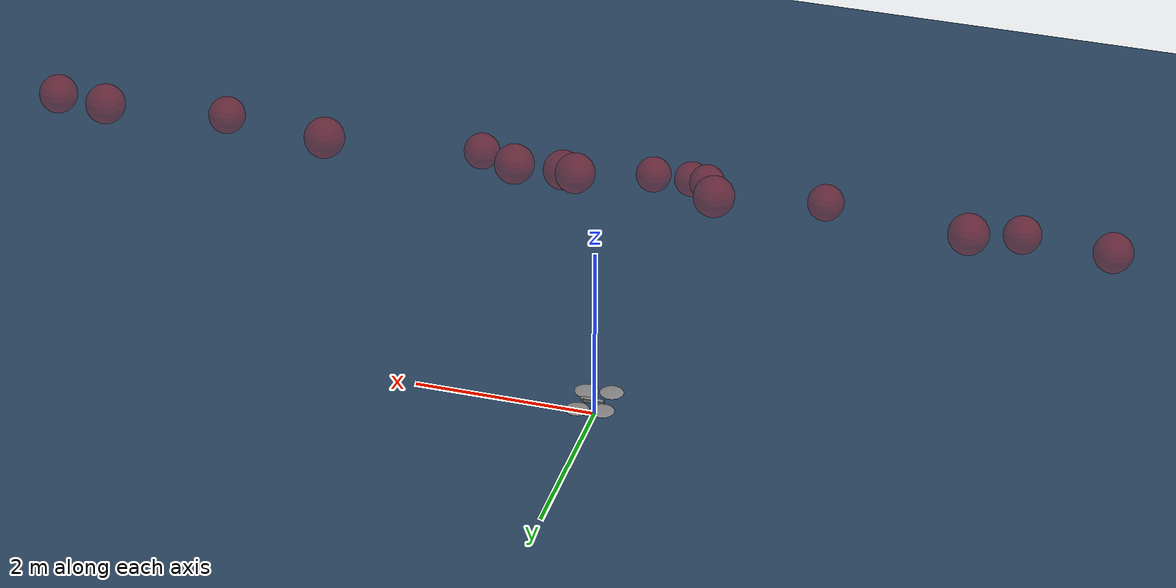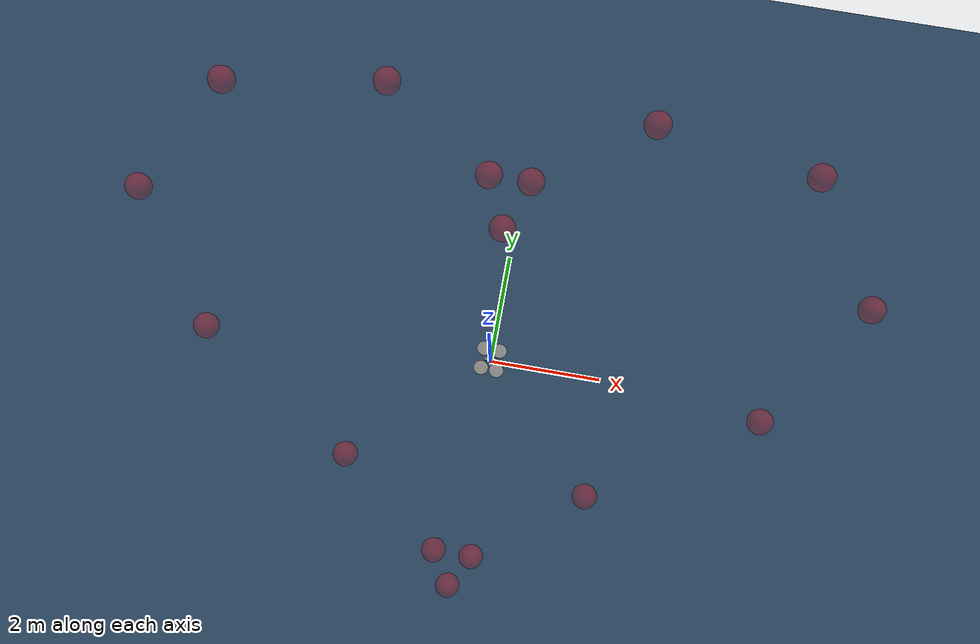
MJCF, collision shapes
<mujoco model="Skydio X2 Basic Training">
  <include file="x2.xml"/>

  <statistic center="0 0 0.1" extent="10" meansize=".05"/>

  <visual>
    <headlight diffuse="0.6 0.6 0.6" ambient="0.3 0.3 0.3"/>
  </visual>

  <asset>
    <texture type="2d" name="ground" builtin="checker" rgb1="0.2 0.3 0.4" rgb2="0.1 0.2 0.3" width="300" height="300"/>
    <material name="ground_mat" texture="ground" texrepeat="5 5"/>
    <material name="goal_mat" rgba="0.2 0.8 0.2 0.5"/>
  </asset>

  <worldbody>
    <light pos="0 0 5" dir="0 0 -1" directional="true"/>

    <!-- Sàn nhà -->
    <geom name="floor" size="20 20 0.1" type="plane" material="ground_mat"/>

<!-- 16 Fat Heart Waypoints (Hardcoded so the Viewer renders them perfectly) -->
    <site name="waypoint0"  pos="0.00 1.18 3.71"  size="0.2" rgba="1 0 0 0.3" type="sphere"/>
    <site name="waypoint1"  pos="0.31 1.81 4.09"  size="0.2" rgba="1 0 0 0.3" type="sphere"/>
    <site name="waypoint2"  pos="1.94 2.73 4.64"  size="0.2" rgba="1 0 0 0.3" type="sphere"/>
    <site name="waypoint3"  pos="4.33 2.43 4.46"  size="0.2" rgba="1 0 0 0.3" type="sphere"/>
    <site name="waypoint4"  pos="5.50 0.94 3.56"  size="0.2" rgba="1 0 0 0.3" type="sphere"/>
    <site name="waypoint5"  pos="4.33 -0.77 2.54" size="0.2" rgba="1 0 0 0.3" type="sphere"/>
    <site name="waypoint6"  pos="1.94 -2.26 1.64" size="0.2" rgba="1 0 0 0.3" type="sphere"/>
    <site name="waypoint7"  pos="0.31 -3.48 0.91" size="0.2" rgba="1 0 0 0.3" type="sphere"/>
    <site name="waypoint8"  pos="0.00 -4.00 0.60" size="0.2" rgba="1 0 0 0.3" type="sphere"/>
    <site name="waypoint9"  pos="-0.31 -3.48 0.91" size="0.2" rgba="1 0 0 0.3" type="sphere"/>
    <site name="waypoint10" pos="-1.94 -2.26 1.64" size="0.2" rgba="1 0 0 0.3" type="sphere"/>
    <site name="waypoint11" pos="-4.33 -0.77 2.54" size="0.2" rgba="1 0 0 0.3" type="sphere"/>
    <site name="waypoint12" pos="-5.50 0.94 3.56" size="0.2" rgba="1 0 0 0.3" type="sphere"/>
    <site name="waypoint13" pos="-4.33 2.43 4.46" size="0.2" rgba="1 0 0 0.3" type="sphere"/>
    <site name="waypoint14" pos="-1.94 2.73 4.64" size="0.2" rgba="1 0 0 0.3" type="sphere"/>
    <site name="waypoint15" pos="-0.31 1.81 4.09" size="0.2" rgba="1 0 0 0.3" type="sphere"/>
  </worldbody>
</mujoco>

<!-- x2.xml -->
<mujoco model="Skydio X2">
  <compiler autolimits="true" assetdir="assets"/>

  <option timestep="0.001" density="1.225" viscosity="1.8e-5"/>

  <default>
    <default class="x2">
      <geom mass="0"/>
      <motor ctrlrange="0 13"/>
      <mesh scale="0.01 0.01 0.01"/>
      <default class="visual">
        <geom group="2" type="mesh" contype="0" conaffinity="0"/>
      </default>
      <default class="collision">
        <geom group="3" type="box"/>
        <default class="rotor">
          <geom type="ellipsoid" size=".13 .13 .01"/>
        </default>
      </default>
      <site group="5"/>
    </default>
  </default>

  <asset>
    <texture type="2d" file="X2_lowpoly_texture_SpinningProps_1024.png"/>
    <material name="phong3SG" texture="X2_lowpoly_texture_SpinningProps_1024"/>
    <material name="invisible" rgba="0 0 0 0"/>

    <mesh class="x2" file="X2_lowpoly.obj"/>
  </asset>

  <worldbody>
    <light name="spotlight" mode="targetbodycom" target="x2" pos="0 -1 2"/>
    <body name="x2" euler="0 0 180" pos="0 0 0.1" childclass="x2">
      <freejoint/>
      <camera name="track" pos="-1 0 .5" xyaxes="0 -1 0 1 0 2" mode="trackcom"/>
      <site name="imu" pos="0 0 .02"/>
      <geom material="phong3SG" mesh="X2_lowpoly" class="visual" quat="0 0 1 1"/>
      <geom class="collision" size=".06 .027 .02" pos=".04 0 .02"/>
      <geom class="collision" size=".06 .027 .02" pos=".04 0 .06"/>
      <geom class="collision" size=".05 .027 .02" pos="-.07 0 .065"/>
      <geom class="collision" size=".023 .017 .01" pos="-.137 .008 .065" quat="1 0 0 1"/>
      <geom name="rotor1" class="rotor" pos="-.14 -.18 .05" mass=".25"/>
      <geom name="rotor2" class="rotor" pos="-.14 .18 .05" mass=".25"/>
      <geom name="rotor3" class="rotor" pos=".14 .18 .08" mass=".25"/>
      <geom name="rotor4" class="rotor" pos=".14 -.18 .08" mass=".25"/>
      <geom size=".16 .04 .02" pos="0 0 0.02" type="ellipsoid" mass=".325" class="visual" material="invisible"/>
      <site name="thrust1" pos="-.14 -.18 .05"/>
      <site name="thrust2" pos="-.14 .18 .05"/>
      <site name="thrust3" pos=".14 .18 .08"/>
      <site name="thrust4" pos=".14 -.18 .08"/>
      <!-- THÊM CÁC SITE CHO LIDAR Ở ĐÂY -->
      <!-- Chúng ta quay trục Z của site để nó nhìn ngang (thay vì nhìn lên) -->
      <site name="s_n"  pos="0 0 .02" euler="0 -90 0"/>
      <site name="s_ne" pos="0 0 .02" euler="0 -90 -45"/>
      <site name="s_e"  pos="0 0 .02" euler="0 -90 -90"/>
      <site name="s_se" pos="0 0 .02" euler="0 -90 -135"/>
      <site name="s_s"  pos="0 0 .02" euler="0 -90 -180"/>
      <site name="s_sw" pos="0 0 .02" euler="0 -90 135"/>
      <site name="s_w"  pos="0 0 .02" euler="0 -90 90"/>
      <site name="s_nw" pos="0 0 .02" euler="0 -90 45"/>
    </body>
  </worldbody>

  <actuator>
    <motor class="x2" name="thrust1" site="thrust1" gear="0 0 1 0 0 -.0201"/>
    <motor class="x2" name="thrust2" site="thrust2" gear="0 0 1 0 0  .0201"/>
    <motor class="x2" name="thrust3" site="thrust3" gear="0 0 1 0 0 -.0201"/>
    <motor class="x2" name="thrust4" site="thrust4" gear="0 0 1 0 0  .0201"/>
  </actuator>

  <sensor>
    <gyro name="body_gyro" site="imu"/>
    <accelerometer name="body_linacc" site="imu"/>
    <framequat name="body_quat" objtype="site" objname="imu"/>
    <!-- Gắn rangefinder vào các site tương ứng -->
    <rangefinder name="rf_n"  site="s_n"/>
    <rangefinder name="rf_ne" site="s_ne"/>
    <rangefinder name="rf_e"  site="s_e"/>
    <rangefinder name="rf_se" site="s_se"/>
    <rangefinder name="rf_s"  site="s_s"/>
    <rangefinder name="rf_sw" site="s_sw"/>
    <rangefinder name="rf_w"  site="s_w"/>
    <rangefinder name="rf_nw" site="s_nw"/>
  </sensor>

  <keyframe>
    <key name="hover" qpos="0 0 .3 1 0 0 0" ctrl="3.2495625 3.2495625 3.2495625 3.2495625"/>
  </keyframe>
</mujoco>
